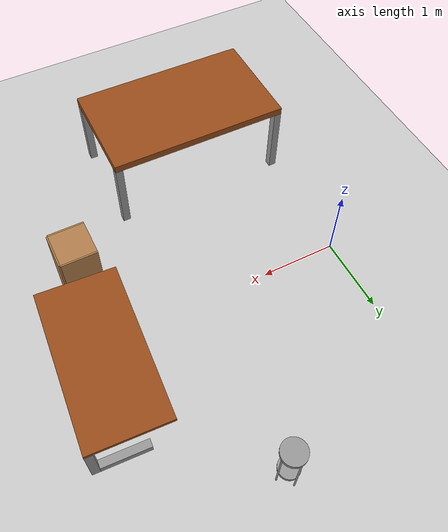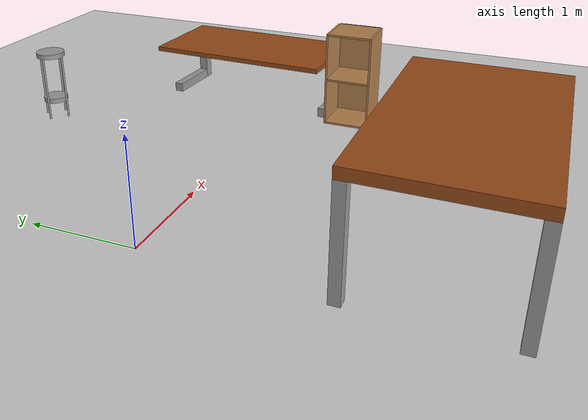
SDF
<sdf version="1.6">
 <world name="default">
  <model name="ground_plane">
   <static>1</static>
   <link name="link">
    <collision name="collision">
     <geometry><plane><normal>0 0 1</normal><size>100 100</size></plane></geometry>
     <surface><friction><ode><mu>100</mu><mu2>50</mu2></ode></friction></surface>
    </collision>
    <visual name="visual">
     <cast_shadows>0</cast_shadows>
     <geometry><plane><normal>0 0 1</normal><size>100 100</size></plane></geometry>
     <material>
      <script><uri>file://media/materials/scripts/gazebo.material</uri><name>Gazebo/Grey</name></script>
     </material>
    </visual>
   </link>
  </model>
  <model name="TaableInstructor">
   <link name="link_0">
    <pose>0 -0.22 0.364 0 -0 0</pose>
    <inertial>
     <mass>10</mass>
     <inertia>
      <ixx>0.166667</ixx>
      <ixy>0</ixy>
      <ixz>0</ixz>
      <iyy>0.166667</iyy>
      <iyz>0</iyz>
      <izz>0.166667</izz>
     </inertia>
    </inertial>
    <visual name="visual">
     <geometry><box><size>2 1 0.05</size></box></geometry>
     <material>
      <lighting>1</lighting>
      <script><uri>file://media/materials/scripts/gazebo.material</uri><name>Gazebo/Grey</name></script>
      <shader type="pixel"><normal_map>__default__</normal_map></shader>
      <ambient>0.6 0.3 0.1 1</ambient>
      <diffuse>0.7 0.7 0.7 1</diffuse>
      <specular>0.01 0.01 0.01 1</specular>
      <emissive>0 0 0 1</emissive>
     </material>
    </visual>
    <collision name="collision">
     <geometry><box><size>2 1 0.05</size></box></geometry>
     <surface>
      <friction>
       <ode><mu>1</mu><mu2>1</mu2><fdir1>0 0 0</fdir1><slip1>0</slip1><slip2>0</slip2></ode>
       <torsional>
        <coefficient>1</coefficient>
        <patch_radius>0</patch_radius>
        <surface_radius>0</surface_radius>
        <use_patch_radius>1</use_patch_radius>
        <ode><slip>0</slip></ode>
       </torsional>
      </friction>
      <bounce><restitution_coefficient>0</restitution_coefficient><threshold>1e+06</threshold></bounce>
      <contact>
       <collide_without_contact>0</collide_without_contact>
       <collide_without_contact_bitmask>1</collide_without_contact_bitmask>
       <collide_bitmask>1</collide_bitmask>
       <ode>
        <soft_cfm>0</soft_cfm>
        <soft_erp>0.2</soft_erp>
        <kp>1e+13</kp>
        <kd>1</kd>
        <max_vel>0.01</max_vel>
        <min_depth>0</min_depth>
       </ode>
       <bullet>
        <split_impulse>1</split_impulse>
        <split_impulse_penetration_threshold>-0.01</split_impulse_penetration_threshold>
        <soft_cfm>0</soft_cfm>
        <soft_erp>0.2</soft_erp>
        <kp>1e+13</kp>
        <kd>1</kd>
       </bullet>
      </contact>
     </surface>
    </collision>
   </link>
   <link name="link_1">
    <pose>-0.95 0.23 0.039 0 -0 0</pose>
    <inertial>
     <mass>1</mass>
     <inertia>
      <ixx>0.166667</ixx>
      <ixy>0</ixy>
      <ixz>0</ixz>
      <iyy>0.166667</iyy>
      <iyz>0</iyz>
      <izz>0.166667</izz>
     </inertia>
    </inertial>
    <visual name="visual">
     <geometry><box><size>0.1 0.1 0.6</size></box></geometry>
     <material>
      <lighting>1</lighting>
      <script><uri>file://media/materials/scripts/gazebo.material</uri><name>Gazebo/Grey</name></script>
      <shader type="pixel"><normal_map>__default__</normal_map></shader>
      <ambient>0.3 0.3 0.3 1</ambient>
      <diffuse>0.7 0.7 0.7 1</diffuse>
      <specular>0.01 0.01 0.01 1</specular>
      <emissive>0 0 0 1</emissive>
     </material>
    </visual>
    <collision name="collision">
     <geometry><box><size>0.1 0.1 0.6</size></box></geometry>
     <surface>
      <friction>
       <ode><mu>1</mu><mu2>1</mu2><fdir1>0 0 0</fdir1><slip1>0</slip1><slip2>0</slip2></ode>
       <torsional>
        <coefficient>1</coefficient>
        <patch_radius>0</patch_radius>
        <surface_radius>0</surface_radius>
        <use_patch_radius>1</use_patch_radius>
        <ode><slip>0</slip></ode>
       </torsional>
      </friction>
      <bounce><restitution_coefficient>0</restitution_coefficient><threshold>1e+06</threshold></bounce>
      <contact>
       <collide_without_contact>0</collide_without_contact>
       <collide_without_contact_bitmask>1</collide_without_contact_bitmask>
       <collide_bitmask>1</collide_bitmask>
       <ode>
        <soft_cfm>0</soft_cfm>
        <soft_erp>0.2</soft_erp>
        <kp>1e+13</kp>
        <kd>1</kd>
        <max_vel>0.01</max_vel>
        <min_depth>0</min_depth>
       </ode>
       <bullet>
        <split_impulse>1</split_impulse>
        <split_impulse_penetration_threshold>-0.01</split_impulse_penetration_threshold>
        <soft_cfm>0</soft_cfm>
        <soft_erp>0.2</soft_erp>
        <kp>1e+13</kp>
        <kd>1</kd>
       </bullet>
      </contact>
     </surface>
    </collision>
   </link>
   <link name="link_1_clone">
    <pose>0.95 0.23 0.039 0 -0 0</pose>
    <inertial>
     <mass>1</mass>
     <inertia>
      <ixx>0.166667</ixx>
      <ixy>0</ixy>
      <ixz>0</ixz>
      <iyy>0.166667</iyy>
      <iyz>0</iyz>
      <izz>0.166667</izz>
     </inertia>
    </inertial>
    <visual name="visual">
     <geometry><box><size>0.1 0.1 0.6</size></box></geometry>
     <material>
      <lighting>1</lighting>
      <script><uri>file://media/materials/scripts/gazebo.material</uri><name>Gazebo/Grey</name></script>
      <shader type="pixel"><normal_map>__default__</normal_map></shader>
      <ambient>0.3 0.3 0.3 1</ambient>
      <diffuse>0.7 0.7 0.7 1</diffuse>
      <specular>0.01 0.01 0.01 1</specular>
      <emissive>0 0 0 1</emissive>
     </material>
    </visual>
    <collision name="collision">
     <geometry><box><size>0.1 0.1 0.6</size></box></geometry>
     <surface>
      <friction>
       <ode><mu>1</mu><mu2>1</mu2><fdir1>0 0 0</fdir1><slip1>0</slip1><slip2>0</slip2></ode>
       <torsional>
        <coefficient>1</coefficient>
        <patch_radius>0</patch_radius>
        <surface_radius>0</surface_radius>
        <use_patch_radius>1</use_patch_radius>
        <ode><slip>0</slip></ode>
       </torsional>
      </friction>
      <bounce><restitution_coefficient>0</restitution_coefficient><threshold>1e+06</threshold></bounce>
      <contact>
       <collide_without_contact>0</collide_without_contact>
       <collide_without_contact_bitmask>1</collide_without_contact_bitmask>
       <collide_bitmask>1</collide_bitmask>
       <ode>
        <soft_cfm>0</soft_cfm>
        <soft_erp>0.2</soft_erp>
        <kp>1e+13</kp>
        <kd>1</kd>
        <max_vel>0.01</max_vel>
        <min_depth>0</min_depth>
       </ode>
       <bullet>
        <split_impulse>1</split_impulse>
        <split_impulse_penetration_threshold>-0.01</split_impulse_penetration_threshold>
        <soft_cfm>0</soft_cfm>
        <soft_erp>0.2</soft_erp>
        <kp>1e+13</kp>
        <kd>1</kd>
       </bullet>
      </contact>
     </surface>
    </collision>
   </link>
   <link name="link_1_clone_0">
    <pose>-0.95 -0.12 -0.211 1.57 -0 0</pose>
    <inertial>
     <mass>1</mass>
     <inertia>
      <ixx>0.166667</ixx>
      <ixy>0</ixy>
      <ixz>0</ixz>
      <iyy>0.166667</iyy>
      <iyz>0</iyz>
      <izz>0.166667</izz>
     </inertia>
    </inertial>
    <visual name="visual">
     <geometry><box><size>0.1 0.1 0.6</size></box></geometry>
     <material>
      <lighting>1</lighting>
      <script><uri>file://media/materials/scripts/gazebo.material</uri><name>Gazebo/Grey</name></script>
      <shader type="pixel"><normal_map>__default__</normal_map></shader>
      <ambient>0.3 0.3 0.3 1</ambient>
      <diffuse>0.7 0.7 0.7 1</diffuse>
      <specular>0.01 0.01 0.01 1</specular>
      <emissive>0 0 0 1</emissive>
     </material>
    </visual>
    <collision name="collision">
     <geometry><box><size>0.1 0.1 0.6</size></box></geometry>
     <surface>
      <friction>
       <ode><mu>1</mu><mu2>1</mu2><fdir1>0 0 0</fdir1><slip1>0</slip1><slip2>0</slip2></ode>
       <torsional>
        <coefficient>1</coefficient>
        <patch_radius>0</patch_radius>
        <surface_radius>0</surface_radius>
        <use_patch_radius>1</use_patch_radius>
        <ode><slip>0</slip></ode>
       </torsional>
      </friction>
      <bounce><restitution_coefficient>0</restitution_coefficient><threshold>1e+06</threshold></bounce>
      <contact>
       <collide_without_contact>0</collide_without_contact>
       <collide_without_contact_bitmask>1</collide_without_contact_bitmask>
       <collide_bitmask>1</collide_bitmask>
       <ode>
        <soft_cfm>0</soft_cfm>
        <soft_erp>0.2</soft_erp>
        <kp>1e+13</kp>
        <kd>1</kd>
        <max_vel>0.01</max_vel>
        <min_depth>0</min_depth>
       </ode>
       <bullet>
        <split_impulse>1</split_impulse>
        <split_impulse_penetration_threshold>-0.01</split_impulse_penetration_threshold>
        <soft_cfm>0</soft_cfm>
        <soft_erp>0.2</soft_erp>
        <kp>1e+13</kp>
        <kd>1</kd>
       </bullet>
      </contact>
     </surface>
    </collision>
   </link>
   <link name="link_1_clone_0_clone">
    <pose>0.95 -0.12 -0.231 1.57 -0 0</pose>
    <inertial>
     <mass>1</mass>
     <inertia>
      <ixx>0.166667</ixx>
      <ixy>0</ixy>
      <ixz>0</ixz>
      <iyy>0.166667</iyy>
      <iyz>0</iyz>
      <izz>0.166667</izz>
     </inertia>
    </inertial>
    <visual name="visual">
     <geometry><box><size>0.1 0.1 0.6</size></box></geometry>
     <material>
      <lighting>1</lighting>
      <script><uri>file://media/materials/scripts/gazebo.material</uri><name>Gazebo/Grey</name></script>
      <shader type="pixel"><normal_map>__default__</normal_map></shader>
      <ambient>0.3 0.3 0.3 1</ambient>
      <diffuse>0.7 0.7 0.7 1</diffuse>
      <specular>0.01 0.01 0.01 1</specular>
      <emissive>0 0 0 1</emissive>
     </material>
    </visual>
    <collision name="collision">
     <geometry><box><size>0.1 0.1 0.6</size></box></geometry>
     <surface>
      <friction>
       <ode><mu>1</mu><mu2>1</mu2><fdir1>0 0 0</fdir1><slip1>0</slip1><slip2>0</slip2></ode>
       <torsional>
        <coefficient>1</coefficient>
        <patch_radius>0</patch_radius>
        <surface_radius>0</surface_radius>
        <use_patch_radius>1</use_patch_radius>
        <ode><slip>0</slip></ode>
       </torsional>
      </friction>
      <bounce><restitution_coefficient>0</restitution_coefficient><threshold>1e+06</threshold></bounce>
      <contact>
       <collide_without_contact>0</collide_without_contact>
       <collide_without_contact_bitmask>1</collide_without_contact_bitmask>
       <collide_bitmask>1</collide_bitmask>
       <ode>
        <soft_cfm>0</soft_cfm>
        <soft_erp>0.2</soft_erp>
        <kp>1e+13</kp>
        <kd>1</kd>
        <max_vel>0.01</max_vel>
        <min_depth>0</min_depth>
       </ode>
       <bullet>
        <split_impulse>1</split_impulse>
        <split_impulse_penetration_threshold>-0.01</split_impulse_penetration_threshold>
        <soft_cfm>0</soft_cfm>
        <soft_erp>0.2</soft_erp>
        <kp>1e+13</kp>
        <kd>1</kd>
       </bullet>
      </contact>
     </surface>
    </collision>
   </link>
   <joint name="link_0_JOINT_0" type="fixed">
    <parent>link_0</parent>
    <child>link_1_clone</child>
    <physics>
     <ode><limit><cfm>0</cfm><erp>0.2</erp></limit><suspension><cfm>0</cfm><erp>0.2</erp></suspension></ode>
    </physics>
   </joint>
   <joint name="link_0_JOINT_1" type="fixed">
    <parent>link_0</parent>
    <child>link_1</child>
    <physics>
     <ode><limit><cfm>0</cfm><erp>0.2</erp></limit><suspension><cfm>0</cfm><erp>0.2</erp></suspension></ode>
    </physics>
   </joint>
   <joint name="link_1_JOINT_2" type="fixed">
    <parent>link_1</parent>
    <child>link_1_clone_0</child>
    <physics>
     <ode><limit><cfm>0</cfm><erp>0.2</erp></limit><suspension><cfm>0</cfm><erp>0.2</erp></suspension></ode>
    </physics>
   </joint>
   <joint name="link_1_clone_JOINT_4" type="fixed">
    <parent>link_1_clone</parent>
    <child>link_1_clone_0_clone</child>
    <physics>
     <ode><limit><cfm>0</cfm><erp>0.2</erp></limit><suspension><cfm>0</cfm><erp>0.2</erp></suspension></ode>
    </physics>
   </joint>
   <static>0</static>
   <pose>3.56817 0.390034 0.271604 0.000799 -0.010522 -1.6362</pose>
  </model>
  <model name="TableStudent_0">
   <link name="link_6">
    <pose>0 0 0.44 0 -0 0</pose>
    <inertial>
     <mass>1</mass>
     <inertia>
      <ixx>0.166667</ixx>
      <ixy>0</ixy>
      <ixz>0</ixz>
      <iyy>0.166667</iyy>
      <iyz>0</iyz>
      <izz>0.166667</izz>
     </inertia>
    </inertial>
    <visual name="visual">
     <geometry><box><size>2.4 1.4 0.1</size></box></geometry>
     <material>
      <lighting>1</lighting>
      <script><uri>file://media/materials/scripts/gazebo.material</uri><name>Gazebo/Grey</name></script>
      <shader type="pixel"><normal_map>__default__</normal_map></shader>
      <ambient>0.6 0.3 0.1 1</ambient>
      <diffuse>0.7 0.7 0.7 1</diffuse>
      <specular>0.01 0.01 0.01 1</specular>
      <emissive>0 0 0 1</emissive>
     </material>
    </visual>
    <collision name="collision">
     <geometry><box><size>2.4 1.4 0.1</size></box></geometry>
     <surface>
      <friction>
       <ode><mu>1</mu><mu2>1</mu2><fdir1>0 0 0</fdir1><slip1>0</slip1><slip2>0</slip2></ode>
       <torsional>
        <coefficient>1</coefficient>
        <patch_radius>0</patch_radius>
        <surface_radius>0</surface_radius>
        <use_patch_radius>1</use_patch_radius>
        <ode><slip>0</slip></ode>
       </torsional>
      </friction>
      <bounce><restitution_coefficient>0</restitution_coefficient><threshold>1e+06</threshold></bounce>
      <contact>
       <collide_without_contact>0</collide_without_contact>
       <collide_without_contact_bitmask>1</collide_without_contact_bitmask>
       <collide_bitmask>1</collide_bitmask>
       <ode>
        <soft_cfm>0</soft_cfm>
        <soft_erp>0.2</soft_erp>
        <kp>1e+13</kp>
        <kd>1</kd>
        <max_vel>0.01</max_vel>
        <min_depth>0</min_depth>
       </ode>
       <bullet>
        <split_impulse>1</split_impulse>
        <split_impulse_penetration_threshold>-0.01</split_impulse_penetration_threshold>
        <soft_cfm>0</soft_cfm>
        <soft_erp>0.2</soft_erp>
        <kp>1e+13</kp>
        <kd>1</kd>
       </bullet>
      </contact>
     </surface>
    </collision>
   </link>
   <link name="link_7">
    <pose>1.15 0.65 -0.11 0 -0 0</pose>
    <inertial>
     <mass>2</mass>
     <inertia>
      <ixx>0.166667</ixx>
      <ixy>0</ixy>
      <ixz>0</ixz>
      <iyy>0.166667</iyy>
      <iyz>0</iyz>
      <izz>0.166667</izz>
     </inertia>
    </inertial>
    <visual name="visual">
     <geometry><box><size>0.1 0.1 1</size></box></geometry>
     <material>
      <lighting>1</lighting>
      <script><uri>file://media/materials/scripts/gazebo.material</uri><name>Gazebo/Grey</name></script>
      <shader type="pixel"><normal_map>__default__</normal_map></shader>
      <ambient>0.3 0.3 0.3 1</ambient>
      <diffuse>0.7 0.7 0.7 1</diffuse>
      <specular>0.01 0.01 0.01 1</specular>
      <emissive>0 0 0 1</emissive>
     </material>
    </visual>
    <collision name="collision">
     <geometry><box><size>0.1 0.1 1</size></box></geometry>
     <surface>
      <friction>
       <ode><mu>1</mu><mu2>1</mu2><fdir1>0 0 0</fdir1><slip1>0</slip1><slip2>0</slip2></ode>
       <torsional>
        <coefficient>1</coefficient>
        <patch_radius>0</patch_radius>
        <surface_radius>0</surface_radius>
        <use_patch_radius>1</use_patch_radius>
        <ode><slip>0</slip></ode>
       </torsional>
      </friction>
      <bounce><restitution_coefficient>0</restitution_coefficient><threshold>1e+06</threshold></bounce>
      <contact>
       <collide_without_contact>0</collide_without_contact>
       <collide_without_contact_bitmask>1</collide_without_contact_bitmask>
       <collide_bitmask>1</collide_bitmask>
       <ode>
        <soft_cfm>0</soft_cfm>
        <soft_erp>0.2</soft_erp>
        <kp>1e+13</kp>
        <kd>1</kd>
        <max_vel>0.01</max_vel>
        <min_depth>0</min_depth>
       </ode>
       <bullet>
        <split_impulse>1</split_impulse>
        <split_impulse_penetration_threshold>-0.01</split_impulse_penetration_threshold>
        <soft_cfm>0</soft_cfm>
        <soft_erp>0.2</soft_erp>
        <kp>1e+13</kp>
        <kd>1</kd>
       </bullet>
      </contact>
     </surface>
    </collision>
   </link>
   <link name="link_7_clone">
    <pose>-1.15 -0.65 -0.11 0 -0 0</pose>
    <inertial>
     <mass>2</mass>
     <inertia>
      <ixx>0.166667</ixx>
      <ixy>0</ixy>
      <ixz>0</ixz>
      <iyy>0.166667</iyy>
      <iyz>0</iyz>
      <izz>0.166667</izz>
     </inertia>
    </inertial>
    <visual name="visual">
     <geometry><box><size>0.1 0.1 1</size></box></geometry>
     <material>
      <lighting>1</lighting>
      <script><uri>file://media/materials/scripts/gazebo.material</uri><name>Gazebo/Grey</name></script>
      <shader type="pixel"><normal_map>__default__</normal_map></shader>
      <ambient>0.3 0.3 0.3 1</ambient>
      <diffuse>0.7 0.7 0.7 1</diffuse>
      <specular>0.01 0.01 0.01 1</specular>
      <emissive>0 0 0 1</emissive>
     </material>
    </visual>
    <collision name="collision">
     <geometry><box><size>0.1 0.1 1</size></box></geometry>
     <surface>
      <friction>
       <ode><mu>1</mu><mu2>1</mu2><fdir1>0 0 0</fdir1><slip1>0</slip1><slip2>0</slip2></ode>
       <torsional>
        <coefficient>1</coefficient>
        <patch_radius>0</patch_radius>
        <surface_radius>0</surface_radius>
        <use_patch_radius>1</use_patch_radius>
        <ode><slip>0</slip></ode>
       </torsional>
      </friction>
      <bounce><restitution_coefficient>0</restitution_coefficient><threshold>1e+06</threshold></bounce>
      <contact>
       <collide_without_contact>0</collide_without_contact>
       <collide_without_contact_bitmask>1</collide_without_contact_bitmask>
       <collide_bitmask>1</collide_bitmask>
       <ode>
        <soft_cfm>0</soft_cfm>
        <soft_erp>0.2</soft_erp>
        <kp>1e+13</kp>
        <kd>1</kd>
        <max_vel>0.01</max_vel>
        <min_depth>0</min_depth>
       </ode>
       <bullet>
        <split_impulse>1</split_impulse>
        <split_impulse_penetration_threshold>-0.01</split_impulse_penetration_threshold>
        <soft_cfm>0</soft_cfm>
        <soft_erp>0.2</soft_erp>
        <kp>1e+13</kp>
        <kd>1</kd>
       </bullet>
      </contact>
     </surface>
    </collision>
   </link>
   <link name="link_7_clone_0">
    <pose>1.15 -0.65 -0.11 0 -0 0</pose>
    <inertial>
     <mass>2</mass>
     <inertia>
      <ixx>0.166667</ixx>
      <ixy>0</ixy>
      <ixz>0</ixz>
      <iyy>0.166667</iyy>
      <iyz>0</iyz>
      <izz>0.166667</izz>
     </inertia>
    </inertial>
    <visual name="visual">
     <geometry><box><size>0.1 0.1 1</size></box></geometry>
     <material>
      <lighting>1</lighting>
      <script><uri>file://media/materials/scripts/gazebo.material</uri><name>Gazebo/Grey</name></script>
      <shader type="pixel"><normal_map>__default__</normal_map></shader>
      <ambient>0.3 0.3 0.3 1</ambient>
      <diffuse>0.7 0.7 0.7 1</diffuse>
      <specular>0.01 0.01 0.01 1</specular>
      <emissive>0 0 0 1</emissive>
     </material>
    </visual>
    <collision name="collision">
     <geometry><box><size>0.1 0.1 1</size></box></geometry>
     <surface>
      <friction>
       <ode><mu>1</mu><mu2>1</mu2><fdir1>0 0 0</fdir1><slip1>0</slip1><slip2>0</slip2></ode>
       <torsional>
        <coefficient>1</coefficient>
        <patch_radius>0</patch_radius>
        <surface_radius>0</surface_radius>
        <use_patch_radius>1</use_patch_radius>
        <ode><slip>0</slip></ode>
       </torsional>
      </friction>
      <bounce><restitution_coefficient>0</restitution_coefficient><threshold>1e+06</threshold></bounce>
      <contact>
       <collide_without_contact>0</collide_without_contact>
       <collide_without_contact_bitmask>1</collide_without_contact_bitmask>
       <collide_bitmask>1</collide_bitmask>
       <ode>
        <soft_cfm>0</soft_cfm>
        <soft_erp>0.2</soft_erp>
        <kp>1e+13</kp>
        <kd>1</kd>
        <max_vel>0.01</max_vel>
        <min_depth>0</min_depth>
       </ode>
       <bullet>
        <split_impulse>1</split_impulse>
        <split_impulse_penetration_threshold>-0.01</split_impulse_penetration_threshold>
        <soft_cfm>0</soft_cfm>
        <soft_erp>0.2</soft_erp>
        <kp>1e+13</kp>
        <kd>1</kd>
       </bullet>
      </contact>
     </surface>
    </collision>
   </link>
   <link name="link_7_clone_1">
    <pose>-1.15 0.65 -0.11 0 -0 0</pose>
    <inertial>
     <mass>2</mass>
     <inertia>
      <ixx>0.166667</ixx>
      <ixy>0</ixy>
      <ixz>0</ixz>
      <iyy>0.166667</iyy>
      <iyz>0</iyz>
      <izz>0.166667</izz>
     </inertia>
    </inertial>
    <visual name="visual">
     <geometry><box><size>0.1 0.1 1</size></box></geometry>
     <material>
      <lighting>1</lighting>
      <script><uri>file://media/materials/scripts/gazebo.material</uri><name>Gazebo/Grey</name></script>
      <shader type="pixel"><normal_map>__default__</normal_map></shader>
      <ambient>0.3 0.3 0.3 1</ambient>
      <diffuse>0.7 0.7 0.7 1</diffuse>
      <specular>0.01 0.01 0.01 1</specular>
      <emissive>0 0 0 1</emissive>
     </material>
    </visual>
    <collision name="collision">
     <geometry><box><size>0.1 0.1 1</size></box></geometry>
     <surface>
      <friction>
       <ode><mu>1</mu><mu2>1</mu2><fdir1>0 0 0</fdir1><slip1>0</slip1><slip2>0</slip2></ode>
       <torsional>
        <coefficient>1</coefficient>
        <patch_radius>0</patch_radius>
        <surface_radius>0</surface_radius>
        <use_patch_radius>1</use_patch_radius>
        <ode><slip>0</slip></ode>
       </torsional>
      </friction>
      <bounce><restitution_coefficient>0</restitution_coefficient><threshold>1e+06</threshold></bounce>
      <contact>
       <collide_without_contact>0</collide_without_contact>
       <collide_without_contact_bitmask>1</collide_without_contact_bitmask>
       <collide_bitmask>1</collide_bitmask>
       <ode>
        <soft_cfm>0</soft_cfm>
        <soft_erp>0.2</soft_erp>
        <kp>1e+13</kp>
        <kd>1</kd>
        <max_vel>0.01</max_vel>
        <min_depth>0</min_depth>
       </ode>
       <bullet>
        <split_impulse>1</split_impulse>
        <split_impulse_penetration_threshold>-0.01</split_impulse_penetration_threshold>
        <soft_cfm>0</soft_cfm>
        <soft_erp>0.2</soft_erp>
        <kp>1e+13</kp>
        <kd>1</kd>
       </bullet>
      </contact>
     </surface>
    </collision>
   </link>
   <joint name="link_6_JOINT_10" type="fixed">
    <parent>link_6</parent>
    <child>link_7_clone</child>
    <physics>
     <ode><limit><cfm>0</cfm><erp>0.2</erp></limit><suspension><cfm>0</cfm><erp>0.2</erp></suspension></ode>
    </physics>
   </joint>
   <joint name="link_6_JOINT_11" type="fixed">
    <parent>link_6</parent>
    <child>link_7_clone_1</child>
    <physics>
     <ode><limit><cfm>0</cfm><erp>0.2</erp></limit><suspension><cfm>0</cfm><erp>0.2</erp></suspension></ode>
    </physics>
   </joint>
   <joint name="link_6_JOINT_12" type="fixed">
    <parent>link_6</parent>
    <child>link_7</child>
    <physics>
     <ode><limit><cfm>0</cfm><erp>0.2</erp></limit><suspension><cfm>0</cfm><erp>0.2</erp></suspension></ode>
    </physics>
   </joint>
   <joint name="link_6_JOINT_13" type="revolute">
    <parent>link_6</parent>
    <child>link_7_clone_0</child>
    <axis>
     <xyz>1 0 0</xyz>
     <use_parent_model_frame>0</use_parent_model_frame>
     <limit>
      <lower>-1.79769e+308</lower>
      <upper>1.79769e+308</upper>
      <effort>-1</effort>
      <velocity>-1</velocity>
     </limit>
     <dynamics>
      <spring_reference>0</spring_reference>
      <spring_stiffness>0</spring_stiffness>
      <damping>0</damping>
     </dynamics>
    </axis>
    <physics>
     <ode><limit><cfm>0</cfm><erp>0.2</erp></limit><suspension><cfm>0</cfm><erp>0.2</erp></suspension></ode>
    </physics>
   </joint>
   <static>0</static>
   <pose>1.10344 -2.33253 0.610001 0 0 -0.007436</pose>
  </model>
  <model name="Stool_0_clone">
   <link name="link_3">
    <pose>0 -0 0.316667 0 -0 0</pose>
    <inertial>
     <mass>0.2</mass>
     <inertia><ixx>0.145833</ixx><ixy>0</ixy><ixz>0</ixz><iyy>0.145833</iyy><iyz>0</iyz><izz>0.125</izz></inertia>
    </inertial>
    <visual name="visual">
     <geometry><cylinder><radius>0.15</radius><length>0.05</length></cylinder></geometry>
     <material>
      <lighting>1</lighting>
      <script><uri>file://media/materials/scripts/gazebo.material</uri><name>Gazebo/Grey</name></script>
      <shader type="pixel"><normal_map>__default__</normal_map></shader>
      <ambient>0.3 0.3 0.3 1</ambient>
      <diffuse>0.7 0.7 0.7 1</diffuse>
      <specular>0.01 0.01 0.01 1</specular>
      <emissive>0 0 0 1</emissive>
     </material>
    </visual>
    <collision name="collision">
     <geometry><cylinder><radius>0.15</radius><length>0.05</length></cylinder></geometry>
     <surface>
      <friction>
       <ode><mu>1</mu><mu2>1</mu2><fdir1>0 0 0</fdir1><slip1>0</slip1><slip2>0</slip2></ode>
       <torsional>
        <coefficient>1</coefficient>
        <patch_radius>0</patch_radius>
        <surface_radius>0</surface_radius>
        <use_patch_radius>1</use_patch_radius>
        <ode><slip>0</slip></ode>
       </torsional>
      </friction>
      <bounce><restitution_coefficient>0</restitution_coefficient><threshold>1e+06</threshold></bounce>
      <contact>
       <collide_without_contact>0</collide_without_contact>
       <collide_without_contact_bitmask>1</collide_without_contact_bitmask>
       <collide_bitmask>1</collide_bitmask>
       <ode>
        <soft_cfm>0</soft_cfm>
        <soft_erp>0.2</soft_erp>
        <kp>1e+13</kp>
        <kd>1</kd>
        <max_vel>0.01</max_vel>
        <min_depth>0</min_depth>
       </ode>
       <bullet>
        <split_impulse>1</split_impulse>
        <split_impulse_penetration_threshold>-0.01</split_impulse_penetration_threshold>
        <soft_cfm>0</soft_cfm>
        <soft_erp>0.2</soft_erp>
        <kp>1e+13</kp>
        <kd>1</kd>
       </bullet>
      </contact>
     </surface>
    </collision>
   </link>
   <link name="link_4">
    <pose>-0 0 -0.2 0 -0 0</pose>
    <inertial>
     <mass>1</mass>
     <inertia><ixx>0.145833</ixx><ixy>0</ixy><ixz>0</ixz><iyy>0.145833</iyy><iyz>0</iyz><izz>0.125</izz></inertia>
    </inertial>
    <visual name="visual">
     <geometry><cylinder><radius>0.13</radius><length>0.05</length></cylinder></geometry>
     <material>
      <lighting>1</lighting>
      <script><uri>file://media/materials/scripts/gazebo.material</uri><name>Gazebo/Grey</name></script>
      <shader type="pixel"><normal_map>__default__</normal_map></shader>
      <ambient>0.3 0.3 0.3 1</ambient>
      <diffuse>0.7 0.7 0.7 1</diffuse>
      <specular>0.01 0.01 0.01 1</specular>
      <emissive>0 0 0 1</emissive>
     </material>
    </visual>
    <collision name="collision">
     <geometry><cylinder><radius>0.13</radius><length>0.05</length></cylinder></geometry>
     <surface>
      <friction>
       <ode><mu>1</mu><mu2>1</mu2><fdir1>0 0 0</fdir1><slip1>0</slip1><slip2>0</slip2></ode>
       <torsional>
        <coefficient>1</coefficient>
        <patch_radius>0</patch_radius>
        <surface_radius>0</surface_radius>
        <use_patch_radius>1</use_patch_radius>
        <ode><slip>0</slip></ode>
       </torsional>
      </friction>
      <bounce><restitution_coefficient>0</restitution_coefficient><threshold>1e+06</threshold></bounce>
      <contact>
       <collide_without_contact>0</collide_without_contact>
       <collide_without_contact_bitmask>1</collide_without_contact_bitmask>
       <collide_bitmask>1</collide_bitmask>
       <ode>
        <soft_cfm>0</soft_cfm>
        <soft_erp>0.2</soft_erp>
        <kp>1e+13</kp>
        <kd>1</kd>
        <max_vel>0.01</max_vel>
        <min_depth>0</min_depth>
       </ode>
       <bullet>
        <split_impulse>1</split_impulse>
        <split_impulse_penetration_threshold>-0.01</split_impulse_penetration_threshold>
        <soft_cfm>0</soft_cfm>
        <soft_erp>0.2</soft_erp>
        <kp>1e+13</kp>
        <kd>1</kd>
       </bullet>
      </contact>
     </surface>
    </collision>
   </link>
   <link name="link_5">
    <pose>0.14 0 -0.058333 0 -0 0</pose>
    <inertial>
     <mass>1</mass>
     <inertia><ixx>0.145833</ixx><ixy>0</ixy><ixz>0</ixz><iyy>0.145833</iyy><iyz>0</iyz><izz>0.125</izz></inertia>
    </inertial>
    <visual name="visual">
     <geometry><cylinder><radius>0.01</radius><length>0.7</length></cylinder></geometry>
     <material>
      <lighting>1</lighting>
      <script><uri>file://media/materials/scripts/gazebo.material</uri><name>Gazebo/Grey</name></script>
      <shader type="pixel"><normal_map>__default__</normal_map></shader>
      <ambient>0.3 0.3 0.3 1</ambient>
      <diffuse>0.7 0.7 0.7 1</diffuse>
      <specular>0.01 0.01 0.01 1</specular>
      <emissive>0 0 0 1</emissive>
     </material>
    </visual>
    <collision name="collision">
     <geometry><cylinder><radius>0.01</radius><length>0.7</length></cylinder></geometry>
     <surface>
      <friction>
       <ode><mu>1</mu><mu2>1</mu2><fdir1>0 0 0</fdir1><slip1>0</slip1><slip2>0</slip2></ode>
       <torsional>
        <coefficient>1</coefficient>
        <patch_radius>0</patch_radius>
        <surface_radius>0</surface_radius>
        <use_patch_radius>1</use_patch_radius>
        <ode><slip>0</slip></ode>
       </torsional>
      </friction>
      <bounce><restitution_coefficient>0</restitution_coefficient><threshold>1e+06</threshold></bounce>
      <contact>
       <collide_without_contact>0</collide_without_contact>
       <collide_without_contact_bitmask>1</collide_without_contact_bitmask>
       <collide_bitmask>1</collide_bitmask>
       <ode>
        <soft_cfm>0</soft_cfm>
        <soft_erp>0.2</soft_erp>
        <kp>1e+13</kp>
        <kd>1</kd>
        <max_vel>0.01</max_vel>
        <min_depth>0</min_depth>
       </ode>
       <bullet>
        <split_impulse>1</split_impulse>
        <split_impulse_penetration_threshold>-0.01</split_impulse_penetration_threshold>
        <soft_cfm>0</soft_cfm>
        <soft_erp>0.2</soft_erp>
        <kp>1e+13</kp>
        <kd>1</kd>
       </bullet>
      </contact>
     </surface>
    </collision>
   </link>
   <link name="link_5_clone">
    <pose>-0.14 0 -0.058333 0 -0 0</pose>
    <inertial>
     <mass>1</mass>
     <inertia><ixx>0.145833</ixx><ixy>0</ixy><ixz>0</ixz><iyy>0.145833</iyy><iyz>0</iyz><izz>0.125</izz></inertia>
    </inertial>
    <visual name="visual">
     <geometry><cylinder><radius>0.01</radius><length>0.7</length></cylinder></geometry>
     <material>
      <lighting>1</lighting>
      <script><uri>file://media/materials/scripts/gazebo.material</uri><name>Gazebo/Grey</name></script>
      <shader type="pixel"><normal_map>__default__</normal_map></shader>
      <ambient>0.3 0.3 0.3 1</ambient>
      <diffuse>0.7 0.7 0.7 1</diffuse>
      <specular>0.01 0.01 0.01 1</specular>
      <emissive>0 0 0 1</emissive>
     </material>
    </visual>
    <collision name="collision">
     <geometry><cylinder><radius>0.01</radius><length>0.7</length></cylinder></geometry>
     <surface>
      <friction>
       <ode><mu>1</mu><mu2>1</mu2><fdir1>0 0 0</fdir1><slip1>0</slip1><slip2>0</slip2></ode>
       <torsional>
        <coefficient>1</coefficient>
        <patch_radius>0</patch_radius>
        <surface_radius>0</surface_radius>
        <use_patch_radius>1</use_patch_radius>
        <ode><slip>0</slip></ode>
       </torsional>
      </friction>
      <bounce><restitution_coefficient>0</restitution_coefficient><threshold>1e+06</threshold></bounce>
      <contact>
       <collide_without_contact>0</collide_without_contact>
       <collide_without_contact_bitmask>1</collide_without_contact_bitmask>
       <collide_bitmask>1</collide_bitmask>
       <ode>
        <soft_cfm>0</soft_cfm>
        <soft_erp>0.2</soft_erp>
        <kp>1e+13</kp>
        <kd>1</kd>
        <max_vel>0.01</max_vel>
        <min_depth>0</min_depth>
       </ode>
       <bullet>
        <split_impulse>1</split_impulse>
        <split_impulse_penetration_threshold>-0.01</split_impulse_penetration_threshold>
        <soft_cfm>0</soft_cfm>
        <soft_erp>0.2</soft_erp>
        <kp>1e+13</kp>
        <kd>1</kd>
       </bullet>
      </contact>
     </surface>
    </collision>
   </link>
   <link name="link_5_clone_0">
    <pose>-0 0.14 -0.058333 0 -0 0</pose>
    <inertial>
     <mass>1</mass>
     <inertia><ixx>0.145833</ixx><ixy>0</ixy><ixz>0</ixz><iyy>0.145833</iyy><iyz>0</iyz><izz>0.125</izz></inertia>
    </inertial>
    <visual name="visual">
     <geometry><cylinder><radius>0.01</radius><length>0.7</length></cylinder></geometry>
     <material>
      <lighting>1</lighting>
      <script><uri>file://media/materials/scripts/gazebo.material</uri><name>Gazebo/Grey</name></script>
      <shader type="pixel"><normal_map>__default__</normal_map></shader>
      <ambient>0.3 0.3 0.3 1</ambient>
      <diffuse>0.7 0.7 0.7 1</diffuse>
      <specular>0.01 0.01 0.01 1</specular>
      <emissive>0 0 0 1</emissive>
     </material>
    </visual>
    <collision name="collision">
     <geometry><cylinder><radius>0.01</radius><length>0.7</length></cylinder></geometry>
     <surface>
      <friction>
       <ode><mu>1</mu><mu2>1</mu2><fdir1>0 0 0</fdir1><slip1>0</slip1><slip2>0</slip2></ode>
       <torsional>
        <coefficient>1</coefficient>
        <patch_radius>0</patch_radius>
        <surface_radius>0</surface_radius>
        <use_patch_radius>1</use_patch_radius>
        <ode><slip>0</slip></ode>
       </torsional>
      </friction>
      <bounce><restitution_coefficient>0</restitution_coefficient><threshold>1e+06</threshold></bounce>
      <contact>
       <collide_without_contact>0</collide_without_contact>
       <collide_without_contact_bitmask>1</collide_without_contact_bitmask>
       <collide_bitmask>1</collide_bitmask>
       <ode>
        <soft_cfm>0</soft_cfm>
        <soft_erp>0.2</soft_erp>
        <kp>1e+13</kp>
        <kd>1</kd>
        <max_vel>0.01</max_vel>
        <min_depth>0</min_depth>
       </ode>
       <bullet>
        <split_impulse>1</split_impulse>
        <split_impulse_penetration_threshold>-0.01</split_impulse_penetration_threshold>
        <soft_cfm>0</soft_cfm>
        <soft_erp>0.2</soft_erp>
        <kp>1e+13</kp>
        <kd>1</kd>
       </bullet>
      </contact>
     </surface>
    </collision>
   </link>
   <link name="link_5_clone_1">
    <pose>0 -0.14 -0.058333 0 -0 0</pose>
    <inertial>
     <mass>1</mass>
     <inertia><ixx>0.145833</ixx><ixy>0</ixy><ixz>0</ixz><iyy>0.145833</iyy><iyz>0</iyz><izz>0.125</izz></inertia>
    </inertial>
    <visual name="visual">
     <geometry><cylinder><radius>0.01</radius><length>0.7</length></cylinder></geometry>
     <material>
      <lighting>1</lighting>
      <script><uri>file://media/materials/scripts/gazebo.material</uri><name>Gazebo/Grey</name></script>
      <shader type="pixel"><normal_map>__default__</normal_map></shader>
      <ambient>0.3 0.3 0.3 1</ambient>
      <diffuse>0.7 0.7 0.7 1</diffuse>
      <specular>0.01 0.01 0.01 1</specular>
      <emissive>0 0 0 1</emissive>
     </material>
    </visual>
    <collision name="collision">
     <geometry><cylinder><radius>0.01</radius><length>0.7</length></cylinder></geometry>
     <surface>
      <friction>
       <ode><mu>1</mu><mu2>1</mu2><fdir1>0 0 0</fdir1><slip1>0</slip1><slip2>0</slip2></ode>
       <torsional>
        <coefficient>1</coefficient>
        <patch_radius>0</patch_radius>
        <surface_radius>0</surface_radius>
        <use_patch_radius>1</use_patch_radius>
        <ode><slip>0</slip></ode>
       </torsional>
      </friction>
      <bounce><restitution_coefficient>0</restitution_coefficient><threshold>1e+06</threshold></bounce>
      <contact>
       <collide_without_contact>0</collide_without_contact>
       <collide_without_contact_bitmask>1</collide_without_contact_bitmask>
       <collide_bitmask>1</collide_bitmask>
       <ode>
        <soft_cfm>0</soft_cfm>
        <soft_erp>0.2</soft_erp>
        <kp>1e+13</kp>
        <kd>1</kd>
        <max_vel>0.01</max_vel>
        <min_depth>0</min_depth>
       </ode>
       <bullet>
        <split_impulse>1</split_impulse>
        <split_impulse_penetration_threshold>-0.01</split_impulse_penetration_threshold>
        <soft_cfm>0</soft_cfm>
        <soft_erp>0.2</soft_erp>
        <kp>1e+13</kp>
        <kd>1</kd>
       </bullet>
      </contact>
     </surface>
    </collision>
   </link>
   <joint name="link_4_JOINT_0" type="fixed">
    <parent>link_4</parent>
    <child>link_5_clone_1</child>
    <physics>
     <ode><limit><cfm>0</cfm><erp>0.2</erp></limit><suspension><cfm>0</cfm><erp>0.2</erp></suspension></ode>
    </physics>
   </joint>
   <joint name="link_4_JOINT_1" type="fixed">
    <parent>link_4</parent>
    <child>link_5_clone</child>
    <physics>
     <ode><limit><cfm>0</cfm><erp>0.2</erp></limit><suspension><cfm>0</cfm><erp>0.2</erp></suspension></ode>
    </physics>
   </joint>
   <joint name="link_4_JOINT_2" type="fixed">
    <parent>link_4</parent>
    <child>link_5_clone_0</child>
    <physics>
     <ode><limit><cfm>0</cfm><erp>0.2</erp></limit><suspension><cfm>0</cfm><erp>0.2</erp></suspension></ode>
    </physics>
   </joint>
   <joint name="link_4_JOINT_3" type="fixed">
    <parent>link_4</parent>
    <child>link_5</child>
    <physics>
     <ode><limit><cfm>0</cfm><erp>0.2</erp></limit><suspension><cfm>0</cfm><erp>0.2</erp></suspension></ode>
    </physics>
   </joint>
   <joint name="link_4_JOINT_4" type="fixed">
    <parent>link_4</parent>
    <child>link_3</child>
    <physics>
     <ode><limit><cfm>0</cfm><erp>0.2</erp></limit><suspension><cfm>0</cfm><erp>0.2</erp></suspension></ode>
    </physics>
   </joint>
   <static>0</static>
   <pose>2.03658 2.28942 0.408333 -1e-06 -2e-06 0.02969</pose>
  </model>
  <model name="cabinet_0">
   <static>1</static>
   <link name="cabinet_bottom_plate">
    <inertial>
     <pose>0 0 -1 0 -0 0</pose>
     <inertia><ixx>2.05</ixx><ixy>0</ixy><ixz>0</ixz><iyy>2.05</iyy><iyz>0</iyz><izz>2.05</izz></inertia>
     <mass>25</mass>
    </inertial>
    <collision name="cabinet_bottom_plate_geom">
     <pose>0 0 0.01 0 -0 0</pose>
     <geometry><box><size>0.45 0.45 0.02</size></box></geometry>
    </collision>
    <visual name="cabinet_bottom_plate_geom_visual">
     <pose>0 0 0.01 0 -0 0</pose>
     <geometry><box><size>0.45 0.45 0.02</size></box></geometry>
     <material>
      <script><uri>file://media/materials/scripts/gazebo.material</uri><name>Gazebo/Wood</name></script>
     </material>
    </visual>
    <collision name="cabinet_bottom_plate_geom_cabinet_back_plate">
     <pose>0.235 0 0.51 0 -0 0</pose>
     <geometry><box><size>0.02 0.45 1.02</size></box></geometry>
    </collision>
    <visual name="cabinet_bottom_plate_geom_cabinet_back_plate_visual">
     <pose>0.235 0 0.51 0 -0 0</pose>
     <geometry><box><size>0.02 0.45 1.02</size></box></geometry>
     <material>
      <script><uri>file://media/materials/scripts/gazebo.material</uri><name>Gazebo/Wood</name></script>
     </material>
    </visual>
    <collision name="cabinet_bottom_plate_geom_cabinet_left_plate">
     <pose>0 0.235 0.51 0 -0 0</pose>
     <geometry><box><size>0.45 0.02 1.02</size></box></geometry>
    </collision>
    <visual name="cabinet_bottom_plate_geom_cabinet_left_plate_visual">
     <pose>0 0.235 0.51 0 -0 0</pose>
     <geometry><box><size>0.45 0.02 1.02</size></box></geometry>
     <material>
      <script><uri>file://media/materials/scripts/gazebo.material</uri><name>Gazebo/Wood</name></script>
     </material>
    </visual>
    <collision name="cabinet_bottom_plate_geom_cabinet_middle_plate">
     <pose>0 0 0.51 0 -0 0</pose>
     <geometry><box><size>0.45 0.45 0.02</size></box></geometry>
    </collision>
    <visual name="cabinet_bottom_plate_geom_cabinet_middle_plate_visual">
     <pose>0 0 0.51 0 -0 0</pose>
     <geometry><box><size>0.45 0.45 0.02</size></box></geometry>
     <material>
      <script><uri>file://media/materials/scripts/gazebo.material</uri><name>Gazebo/Wood</name></script>
     </material>
    </visual>
    <collision name="cabinet_bottom_plate_geom_cabinet_right_plate">
     <pose>0 -0.235 0.51 0 -0 0</pose>
     <geometry><box><size>0.45 0.02 1.02</size></box></geometry>
    </collision>
    <visual name="cabinet_bottom_plate_geom_cabinet_right_plate_visual">
     <pose>0 -0.235 0.51 0 -0 0</pose>
     <geometry><box><size>0.45 0.02 1.02</size></box></geometry>
     <material>
      <script><uri>file://media/materials/scripts/gazebo.material</uri><name>Gazebo/Wood</name></script>
     </material>
    </visual>
    <collision name="cabinet_bottom_plate_geom_cabinet_top_plate">
     <pose>0 0 1.01 0 -0 0</pose>
     <geometry><box><size>0.45 0.45 0.02</size></box></geometry>
    </collision>
    <visual name="cabinet_bottom_plate_geom_cabinet_top_plate_visual">
     <pose>0 0 1.01 0 -0 0</pose>
     <geometry><box><size>0.45 0.45 0.02</size></box></geometry>
     <material>
      <script><uri>file://media/materials/scripts/gazebo.material</uri><name>Gazebo/Wood</name></script>
     </material>
    </visual>
   </link>
   <pose>3.16247 -0.848166 0 0 -0 0</pose>
  </model>
 </world>
</sdf>
